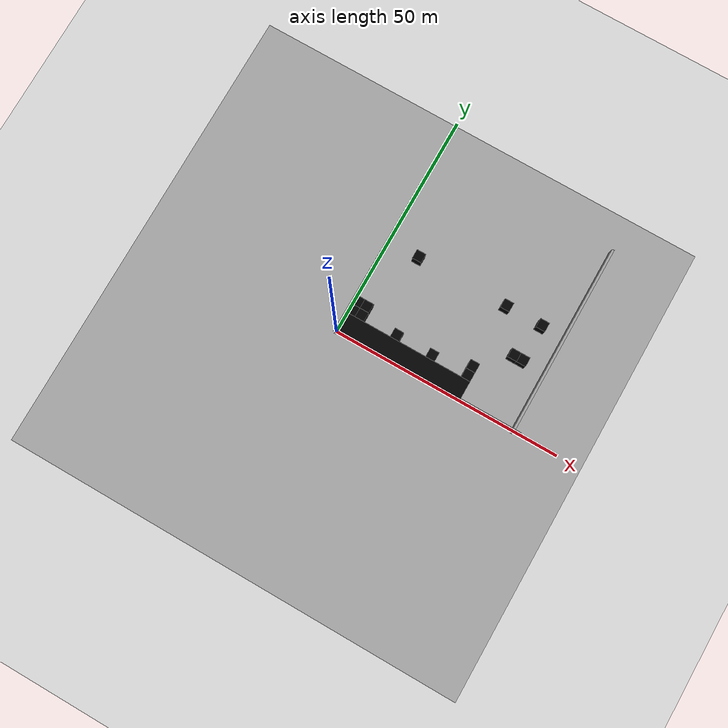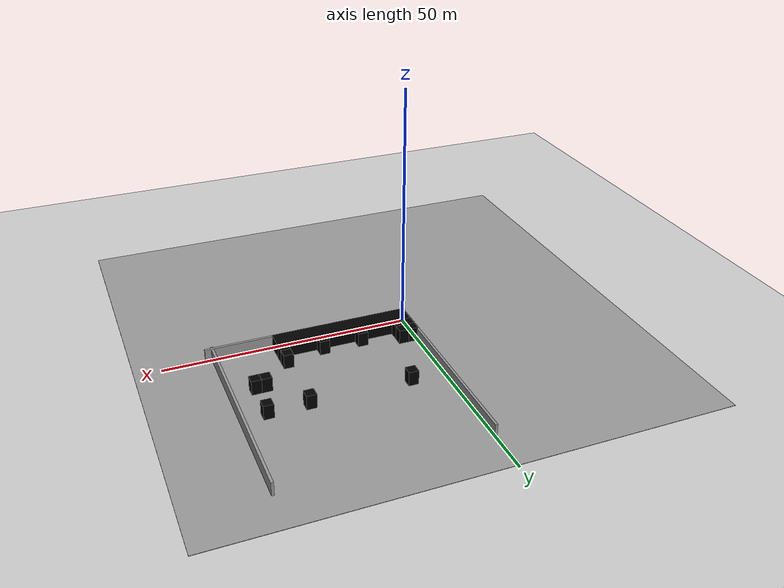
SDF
<sdf version="1.7">
 <world name="default">
  <model name="ground_plane">
   <static>1</static>
   <link name="link">
    <collision name="collision">
     <geometry><plane><normal>0 0 1</normal><size>100 100</size></plane></geometry>
     <surface><friction><ode><mu>100</mu><mu2>50</mu2></ode></friction></surface>
    </collision>
    <visual name="visual">
     <cast_shadows>0</cast_shadows>
     <geometry><plane><normal>0 0 1</normal><size>100 100</size></plane></geometry>
     <material>
      <script><uri>file://media/materials/scripts/gazebo.material</uri><name>Gazebo/Grey</name></script>
     </material>
    </visual>
   </link>
  </model>
  <model name="wood_cube_2_5cm">
   <link name="link">
    <pose>0 0 0.0125 0 -0 0</pose>
    <inertial>
     <mass>0.0073</mass>
     <inertia>
      <ixx>7.60417e-07</ixx>
      <ixy>0</ixy>
      <ixz>0</ixz>
      <iyy>7.60417e-07</iyy>
      <iyz>0</iyz>
      <izz>7.60417e-07</izz>
     </inertia>
    </inertial>
    <collision name="collision">
     <geometry><box><size>0.025 0.025 0.025</size></box></geometry>
     <surface>
      <contact>
       <poissons_ratio>0.347</poissons_ratio>
       <elastic_modulus>8.8e+09</elastic_modulus>
       <ode><kp>100000</kp><kd>100</kd><max_vel>100</max_vel><min_depth>0.001</min_depth></ode>
      </contact>
      <friction>
       <torsional>
        <coefficient>1</coefficient>
        <use_patch_radius>0</use_patch_radius>
        <surface_radius>0.01</surface_radius>
       </torsional>
      </friction>
     </surface>
    </collision>
    <visual name="visual">
     <geometry><box><size>0.025 0.025 0.025</size></box></geometry>
     <material>
      <script><uri>file://media/materials/scripts/gazebo.material</uri><name>Gazebo/Wood</name></script>
     </material>
    </visual>
   </link>
   <pose>9.08294 -8.46454 -0.000474 -1e-06 0.032259 0</pose>
  </model>
  <model name="ground_plane_0">
   <static>1</static>
   <link name="link">
    <collision name="collision">
     <geometry><plane><normal>0 0 1</normal><size>100 100</size></plane></geometry>
     <surface>
      <contact><collide_bitmask>65535</collide_bitmask></contact>
      <friction><ode><mu>100</mu><mu2>50</mu2></ode></friction>
     </surface>
    </collision>
    <visual name="visual">
     <cast_shadows>0</cast_shadows>
     <geometry><plane><normal>0 0 1</normal><size>100 100</size></plane></geometry>
     <material>
      <script><uri>file://media/materials/scripts/gazebo.material</uri><name>Gazebo/Grey</name></script>
     </material>
    </visual>
   </link>
   <pose>5.30691 -0.598783 0 0 -0 0</pose>
  </model>
  <model name="brick_black_2x2_1">
   <link name="chassis">
    <pose>0 0 1.5 0 -0 0</pose>
    <inertial>
     <mass>1</mass>
     <inertia><ixx>1</ixx><ixy>0</ixy><ixz>0</ixz><iyy>1</iyy><iyz>0</iyz><izz>1</izz></inertia>
    </inertial>
    <visual name="visual">
     <geometry><mesh><uri>model://brick_box_3x1x3/meshes/simple_box.dae</uri><scale>2 2 3</scale></mesh></geometry>
     <material>
      <script>
       <uri>model://brick_box_3x1x3/materials/scripts</uri>
       <uri>model://brick_box_3x1x3/materials/textures</uri>
       <name>BrickBox/Diffuse</name>
      </script>
      <shader type="vertex"><normal_map>__default__</normal_map></shader>
      <ambient>0 0 0 1</ambient>
      <diffuse>0 0 0 1</diffuse>
      <specular>0 0 0 1</specular>
      <emissive>0 0 0 1</emissive>
      <lighting>1</lighting>
     </material>
    </visual>
    <collision name="collision">
     <geometry><box><size>2 2 3</size></box></geometry>
     <surface>
      <friction>
       <ode><mu>1</mu><mu2>1</mu2><fdir1>0 0 0</fdir1><slip1>0</slip1><slip2>0</slip2></ode>
       <torsional>
        <coefficient>1</coefficient>
        <patch_radius>0</patch_radius>
        <surface_radius>0</surface_radius>
        <use_patch_radius>1</use_patch_radius>
        <ode><slip>0</slip></ode>
       </torsional>
      </friction>
      <bounce><restitution_coefficient>0</restitution_coefficient><threshold>1e+06</threshold></bounce>
      <contact>
       <collide_without_contact>0</collide_without_contact>
       <collide_without_contact_bitmask>1</collide_without_contact_bitmask>
       <collide_bitmask>1</collide_bitmask>
       <ode>
        <soft_cfm>0</soft_cfm>
        <soft_erp>0.2</soft_erp>
        <kp>1e+13</kp>
        <kd>1</kd>
        <max_vel>0.01</max_vel>
        <min_depth>0</min_depth>
       </ode>
       <bullet>
        <split_impulse>1</split_impulse>
        <split_impulse_penetration_threshold>-0.01</split_impulse_penetration_threshold>
        <soft_cfm>0</soft_cfm>
        <soft_erp>0.2</soft_erp>
        <kp>1e+13</kp>
        <kd>1</kd>
       </bullet>
      </contact>
     </surface>
    </collision>
   </link>
   <static>1</static>
   <pose>35 21 0 0 -0 0</pose>
  </model>
  <model name="brick_black_2x2_5">
   <link name="chassis">
    <pose>0 0 1.5 0 -0 0</pose>
    <inertial>
     <mass>1</mass>
     <inertia><ixx>1</ixx><ixy>0</ixy><ixz>0</ixz><iyy>1</iyy><iyz>0</iyz><izz>1</izz></inertia>
    </inertial>
    <visual name="visual">
     <geometry><mesh><uri>model://brick_box_3x1x3/meshes/simple_box.dae</uri><scale>2 2 3</scale></mesh></geometry>
     <material>
      <script>
       <uri>model://brick_box_3x1x3/materials/scripts</uri>
       <uri>model://brick_box_3x1x3/materials/textures</uri>
       <name>BrickBox/Diffuse</name>
      </script>
      <shader type="vertex"><normal_map>__default__</normal_map></shader>
      <ambient>0 0 0 1</ambient>
      <diffuse>0 0 0 1</diffuse>
      <specular>0 0 0 1</specular>
      <emissive>0 0 0 1</emissive>
      <lighting>1</lighting>
     </material>
    </visual>
    <collision name="collision">
     <geometry><box><size>2 2 3</size></box></geometry>
     <surface>
      <friction>
       <ode><mu>1</mu><mu2>1</mu2><fdir1>0 0 0</fdir1><slip1>0</slip1><slip2>0</slip2></ode>
       <torsional>
        <coefficient>1</coefficient>
        <patch_radius>0</patch_radius>
        <surface_radius>0</surface_radius>
        <use_patch_radius>1</use_patch_radius>
        <ode><slip>0</slip></ode>
       </torsional>
      </friction>
      <bounce><restitution_coefficient>0</restitution_coefficient><threshold>1e+06</threshold></bounce>
      <contact>
       <collide_without_contact>0</collide_without_contact>
       <collide_without_contact_bitmask>1</collide_without_contact_bitmask>
       <collide_bitmask>1</collide_bitmask>
       <ode>
        <soft_cfm>0</soft_cfm>
        <soft_erp>0.2</soft_erp>
        <kp>1e+13</kp>
        <kd>1</kd>
        <max_vel>0.01</max_vel>
        <min_depth>0</min_depth>
       </ode>
       <bullet>
        <split_impulse>1</split_impulse>
        <split_impulse_penetration_threshold>-0.01</split_impulse_penetration_threshold>
        <soft_cfm>0</soft_cfm>
        <soft_erp>0.2</soft_erp>
        <kp>1e+13</kp>
        <kd>1</kd>
       </bullet>
      </contact>
     </surface>
    </collision>
   </link>
   <static>1</static>
   <pose>19 5 0 0 -0 0</pose>
  </model>
  <model name="brick_black_2x2_6">
   <link name="chassis">
    <pose>0 0 1.5 0 -0 0</pose>
    <inertial>
     <mass>1</mass>
     <inertia><ixx>1</ixx><ixy>0</ixy><ixz>0</ixz><iyy>1</iyy><iyz>0</iyz><izz>1</izz></inertia>
    </inertial>
    <visual name="visual">
     <geometry><mesh><uri>model://brick_box_3x1x3/meshes/simple_box.dae</uri><scale>2 2 3</scale></mesh></geometry>
     <material>
      <script>
       <uri>model://brick_box_3x1x3/materials/scripts</uri>
       <uri>model://brick_box_3x1x3/materials/textures</uri>
       <name>BrickBox/Diffuse</name>
      </script>
      <shader type="vertex"><normal_map>__default__</normal_map></shader>
      <ambient>0 0 0 1</ambient>
      <diffuse>0 0 0 1</diffuse>
      <specular>0 0 0 1</specular>
      <emissive>0 0 0 1</emissive>
      <lighting>1</lighting>
     </material>
    </visual>
    <collision name="collision">
     <geometry><box><size>2 2 3</size></box></geometry>
     <surface>
      <friction>
       <ode><mu>1</mu><mu2>1</mu2><fdir1>0 0 0</fdir1><slip1>0</slip1><slip2>0</slip2></ode>
       <torsional>
        <coefficient>1</coefficient>
        <patch_radius>0</patch_radius>
        <surface_radius>0</surface_radius>
        <use_patch_radius>1</use_patch_radius>
        <ode><slip>0</slip></ode>
       </torsional>
      </friction>
      <bounce><restitution_coefficient>0</restitution_coefficient><threshold>1e+06</threshold></bounce>
      <contact>
       <collide_without_contact>0</collide_without_contact>
       <collide_without_contact_bitmask>1</collide_without_contact_bitmask>
       <collide_bitmask>1</collide_bitmask>
       <ode>
        <soft_cfm>0</soft_cfm>
        <soft_erp>0.2</soft_erp>
        <kp>1e+13</kp>
        <kd>1</kd>
        <max_vel>0.01</max_vel>
        <min_depth>0</min_depth>
       </ode>
       <bullet>
        <split_impulse>1</split_impulse>
        <split_impulse_penetration_threshold>-0.01</split_impulse_penetration_threshold>
        <soft_cfm>0</soft_cfm>
        <soft_erp>0.2</soft_erp>
        <kp>1e+13</kp>
        <kd>1</kd>
       </bullet>
      </contact>
     </surface>
    </collision>
   </link>
   <static>1</static>
   <pose>27 7 0 0 -0 0</pose>
  </model>
  <model name="brick_black_2x2_7">
   <link name="chassis">
    <pose>0 0 1.5 0 -0 0</pose>
    <inertial>
     <mass>1</mass>
     <inertia><ixx>1</ixx><ixy>0</ixy><ixz>0</ixz><iyy>1</iyy><iyz>0</iyz><izz>1</izz></inertia>
    </inertial>
    <visual name="visual">
     <geometry><mesh><uri>model://brick_box_3x1x3/meshes/simple_box.dae</uri><scale>2 2 3</scale></mesh></geometry>
     <material>
      <script>
       <uri>model://brick_box_3x1x3/materials/scripts</uri>
       <uri>model://brick_box_3x1x3/materials/textures</uri>
       <name>BrickBox/Diffuse</name>
      </script>
      <shader type="vertex"><normal_map>__default__</normal_map></shader>
      <ambient>0 0 0 1</ambient>
      <diffuse>0 0 0 1</diffuse>
      <specular>0 0 0 1</specular>
      <emissive>0 0 0 1</emissive>
      <lighting>1</lighting>
     </material>
    </visual>
    <collision name="collision">
     <geometry><box><size>2 2 3</size></box></geometry>
     <surface>
      <friction>
       <ode><mu>1</mu><mu2>1</mu2><fdir1>0 0 0</fdir1><slip1>0</slip1><slip2>0</slip2></ode>
       <torsional>
        <coefficient>1</coefficient>
        <patch_radius>0</patch_radius>
        <surface_radius>0</surface_radius>
        <use_patch_radius>1</use_patch_radius>
        <ode><slip>0</slip></ode>
       </torsional>
      </friction>
      <bounce><restitution_coefficient>0</restitution_coefficient><threshold>1e+06</threshold></bounce>
      <contact>
       <collide_without_contact>0</collide_without_contact>
       <collide_without_contact_bitmask>1</collide_without_contact_bitmask>
       <collide_bitmask>1</collide_bitmask>
       <ode>
        <soft_cfm>0</soft_cfm>
        <soft_erp>0.2</soft_erp>
        <kp>1e+13</kp>
        <kd>1</kd>
        <max_vel>0.01</max_vel>
        <min_depth>0</min_depth>
       </ode>
       <bullet>
        <split_impulse>1</split_impulse>
        <split_impulse_penetration_threshold>-0.01</split_impulse_penetration_threshold>
        <soft_cfm>0</soft_cfm>
        <soft_erp>0.2</soft_erp>
        <kp>1e+13</kp>
        <kd>1</kd>
       </bullet>
      </contact>
     </surface>
    </collision>
   </link>
   <static>1</static>
   <pose>27 5 0 0 -0 0</pose>
  </model>
  <model name="brick_black_2x2_8">
   <link name="chassis">
    <pose>0 0 1.5 0 -0 0</pose>
    <inertial>
     <mass>1</mass>
     <inertia><ixx>1</ixx><ixy>0</ixy><ixz>0</ixz><iyy>1</iyy><iyz>0</iyz><izz>1</izz></inertia>
    </inertial>
    <visual name="visual">
     <geometry><mesh><uri>model://brick_box_3x1x3/meshes/simple_box.dae</uri><scale>2 2 3</scale></mesh></geometry>
     <material>
      <script>
       <uri>model://brick_box_3x1x3/materials/scripts</uri>
       <uri>model://brick_box_3x1x3/materials/textures</uri>
       <name>BrickBox/Diffuse</name>
      </script>
      <shader type="vertex"><normal_map>__default__</normal_map></shader>
      <ambient>0 0 0 1</ambient>
      <diffuse>0 0 0 1</diffuse>
      <specular>0 0 0 1</specular>
      <emissive>0 0 0 1</emissive>
      <lighting>1</lighting>
     </material>
    </visual>
    <collision name="collision">
     <geometry><box><size>2 2 3</size></box></geometry>
     <surface>
      <friction>
       <ode><mu>1</mu><mu2>1</mu2><fdir1>0 0 0</fdir1><slip1>0</slip1><slip2>0</slip2></ode>
       <torsional>
        <coefficient>1</coefficient>
        <patch_radius>0</patch_radius>
        <surface_radius>0</surface_radius>
        <use_patch_radius>1</use_patch_radius>
        <ode><slip>0</slip></ode>
       </torsional>
      </friction>
      <bounce><restitution_coefficient>0</restitution_coefficient><threshold>1e+06</threshold></bounce>
      <contact>
       <collide_without_contact>0</collide_without_contact>
       <collide_without_contact_bitmask>1</collide_without_contact_bitmask>
       <collide_bitmask>1</collide_bitmask>
       <ode>
        <soft_cfm>0</soft_cfm>
        <soft_erp>0.2</soft_erp>
        <kp>1e+13</kp>
        <kd>1</kd>
        <max_vel>0.01</max_vel>
        <min_depth>0</min_depth>
       </ode>
       <bullet>
        <split_impulse>1</split_impulse>
        <split_impulse_penetration_threshold>-0.01</split_impulse_penetration_threshold>
        <soft_cfm>0</soft_cfm>
        <soft_erp>0.2</soft_erp>
        <kp>1e+13</kp>
        <kd>1</kd>
       </bullet>
      </contact>
     </surface>
    </collision>
   </link>
   <static>1</static>
   <pose>35 13 0 0 -0 0</pose>
  </model>
  <model name="brick_black_2x2_10">
   <link name="chassis">
    <pose>0 0 1.5 0 -0 0</pose>
    <inertial>
     <mass>1</mass>
     <inertia><ixx>1</ixx><ixy>0</ixy><ixz>0</ixz><iyy>1</iyy><iyz>0</iyz><izz>1</izz></inertia>
    </inertial>
    <visual name="visual">
     <geometry><mesh><uri>model://brick_box_3x1x3/meshes/simple_box.dae</uri><scale>2 2 3</scale></mesh></geometry>
     <material>
      <script>
       <uri>model://brick_box_3x1x3/materials/scripts</uri>
       <uri>model://brick_box_3x1x3/materials/textures</uri>
       <name>BrickBox/Diffuse</name>
      </script>
      <shader type="vertex"><normal_map>__default__</normal_map></shader>
      <ambient>0 0 0 1</ambient>
      <diffuse>0 0 0 1</diffuse>
      <specular>0 0 0 1</specular>
      <emissive>0 0 0 1</emissive>
      <lighting>1</lighting>
     </material>
    </visual>
    <collision name="collision">
     <geometry><box><size>2 2 3</size></box></geometry>
     <surface>
      <friction>
       <ode><mu>1</mu><mu2>1</mu2><fdir1>0 0 0</fdir1><slip1>0</slip1><slip2>0</slip2></ode>
       <torsional>
        <coefficient>1</coefficient>
        <patch_radius>0</patch_radius>
        <surface_radius>0</surface_radius>
        <use_patch_radius>1</use_patch_radius>
        <ode><slip>0</slip></ode>
       </torsional>
      </friction>
      <bounce><restitution_coefficient>0</restitution_coefficient><threshold>1e+06</threshold></bounce>
      <contact>
       <collide_without_contact>0</collide_without_contact>
       <collide_without_contact_bitmask>1</collide_without_contact_bitmask>
       <collide_bitmask>1</collide_bitmask>
       <ode>
        <soft_cfm>0</soft_cfm>
        <soft_erp>0.2</soft_erp>
        <kp>1e+13</kp>
        <kd>1</kd>
        <max_vel>0.01</max_vel>
        <min_depth>0</min_depth>
       </ode>
       <bullet>
        <split_impulse>1</split_impulse>
        <split_impulse_penetration_threshold>-0.01</split_impulse_penetration_threshold>
        <soft_cfm>0</soft_cfm>
        <soft_erp>0.2</soft_erp>
        <kp>1e+13</kp>
        <kd>1</kd>
       </bullet>
      </contact>
     </surface>
    </collision>
   </link>
   <static>1</static>
   <pose>33 13 0 0 -0 0</pose>
  </model>
  <model name="number3_2x2">
   <link name="link">
    <inertial>
     <mass>1</mass>
     <inertia><ixx>1</ixx><ixy>0</ixy><ixz>0</ixz><iyy>1</iyy><iyz>0</iyz><izz>1</izz></inertia>
    </inertial>
    <visual name="visual">
     <geometry><mesh><uri>model://number1/meshes/number.dae</uri><scale>2 2 0.1</scale></mesh></geometry>
     <material>
      <script>
       <uri>model://number3/materials/scripts</uri>
       <uri>model://number3/materials/textures</uri>
       <name>Number/Three</name>
      </script>
      <shader type="pixel"><normal_map>__default__</normal_map></shader>
      <ambient>1 1 1 1</ambient>
      <diffuse>1 1 1 1</diffuse>
      <specular>0 0 0 1</specular>
      <emissive>0 0 0 1</emissive>
     </material>
    </visual>
   </link>
   <static>1</static>
   <pose>33 17 0 0 -0 3.14</pose>
  </model>
  <model name="grey_wall_42">
   <link name="link">
    <pose>0 0 1.4 0 -0 0</pose>
    <inertial>
     <mass>1</mass>
     <inertia><ixx>1</ixx><ixy>0</ixy><ixz>0</ixz><iyy>1</iyy><iyz>0</iyz><izz>1</izz></inertia>
    </inertial>
    <visual name="visual">
     <cast_shadows>0</cast_shadows>
     <geometry><box><size>42 0.5 2.8</size></box></geometry>
     <material>
      <script>
       <uri>model://grey_wall/materials/scripts</uri>
       <uri>model://grey_wall/materials/textures</uri>
       <name>vrc/grey_wall</name>
      </script>
      <shader type="vertex"><normal_map>__default__</normal_map></shader>
      <ambient>1 1 1 1</ambient>
      <diffuse>1 1 1 1</diffuse>
      <specular>0 0 0 1</specular>
      <emissive>0 0 0 1</emissive>
     </material>
    </visual>
    <collision name="collision">
     <geometry><box><size>42 0.5 2.8</size></box></geometry>
     <surface>
      <friction>
       <ode><mu>1</mu><mu2>1</mu2><fdir1>0 0 0</fdir1><slip1>0</slip1><slip2>0</slip2></ode>
       <torsional>
        <coefficient>1</coefficient>
        <patch_radius>0</patch_radius>
        <surface_radius>0</surface_radius>
        <use_patch_radius>1</use_patch_radius>
        <ode><slip>0</slip></ode>
       </torsional>
      </friction>
      <bounce><restitution_coefficient>0</restitution_coefficient><threshold>1e+06</threshold></bounce>
      <contact>
       <collide_without_contact>0</collide_without_contact>
       <collide_without_contact_bitmask>1</collide_without_contact_bitmask>
       <collide_bitmask>1</collide_bitmask>
       <ode>
        <soft_cfm>0</soft_cfm>
        <soft_erp>0.2</soft_erp>
        <kp>1e+13</kp>
        <kd>1</kd>
        <max_vel>0.01</max_vel>
        <min_depth>0</min_depth>
       </ode>
       <bullet>
        <split_impulse>1</split_impulse>
        <split_impulse_penetration_threshold>-0.01</split_impulse_penetration_threshold>
        <soft_cfm>0</soft_cfm>
        <soft_erp>0.2</soft_erp>
        <kp>1e+13</kp>
        <kd>1</kd>
       </bullet>
      </contact>
     </surface>
    </collision>
   </link>
   <static>1</static>
   <pose>20.5 0 0 0 -0 0</pose>
  </model>
  <model name="grey_wall_42_1">
   <link name="link">
    <pose>0 0 1.4 0 -0 0</pose>
    <inertial>
     <mass>1</mass>
     <inertia><ixx>1</ixx><ixy>0</ixy><ixz>0</ixz><iyy>1</iyy><iyz>0</iyz><izz>1</izz></inertia>
    </inertial>
    <visual name="visual">
     <cast_shadows>0</cast_shadows>
     <geometry><box><size>42 0.5 2.8</size></box></geometry>
     <material>
      <script>
       <uri>model://grey_wall/materials/scripts</uri>
       <uri>model://grey_wall/materials/textures</uri>
       <name>vrc/grey_wall</name>
      </script>
      <shader type="vertex"><normal_map>__default__</normal_map></shader>
      <ambient>1 1 1 1</ambient>
      <diffuse>1 1 1 1</diffuse>
      <specular>0 0 0 1</specular>
      <emissive>0 0 0 1</emissive>
     </material>
    </visual>
    <collision name="collision">
     <geometry><box><size>42 0.5 2.8</size></box></geometry>
     <surface>
      <friction>
       <ode><mu>1</mu><mu2>1</mu2><fdir1>0 0 0</fdir1><slip1>0</slip1><slip2>0</slip2></ode>
       <torsional>
        <coefficient>1</coefficient>
        <patch_radius>0</patch_radius>
        <surface_radius>0</surface_radius>
        <use_patch_radius>1</use_patch_radius>
        <ode><slip>0</slip></ode>
       </torsional>
      </friction>
      <bounce><restitution_coefficient>0</restitution_coefficient><threshold>1e+06</threshold></bounce>
      <contact>
       <collide_without_contact>0</collide_without_contact>
       <collide_without_contact_bitmask>1</collide_without_contact_bitmask>
       <collide_bitmask>1</collide_bitmask>
       <ode>
        <soft_cfm>0</soft_cfm>
        <soft_erp>0.2</soft_erp>
        <kp>1e+13</kp>
        <kd>1</kd>
        <max_vel>0.01</max_vel>
        <min_depth>0</min_depth>
       </ode>
       <bullet>
        <split_impulse>1</split_impulse>
        <split_impulse_penetration_threshold>-0.01</split_impulse_penetration_threshold>
        <soft_cfm>0</soft_cfm>
        <soft_erp>0.2</soft_erp>
        <kp>1e+13</kp>
        <kd>1</kd>
       </bullet>
      </contact>
     </surface>
    </collision>
   </link>
   <static>1</static>
   <pose>40 20.5 0 0 -0 1.57</pose>
  </model>
  <model name="grey_wall_42_2">
   <link name="link">
    <pose>0 0 1.4 0 -0 0</pose>
    <inertial>
     <mass>1</mass>
     <inertia><ixx>1</ixx><ixy>0</ixy><ixz>0</ixz><iyy>1</iyy><iyz>0</iyz><izz>1</izz></inertia>
    </inertial>
    <visual name="visual">
     <cast_shadows>0</cast_shadows>
     <geometry><box><size>42 0.5 2.8</size></box></geometry>
     <material>
      <script>
       <uri>model://grey_wall/materials/scripts</uri>
       <uri>model://grey_wall/materials/textures</uri>
       <name>vrc/grey_wall</name>
      </script>
      <shader type="vertex"><normal_map>__default__</normal_map></shader>
      <ambient>1 1 1 1</ambient>
      <diffuse>1 1 1 1</diffuse>
      <specular>0 0 0 1</specular>
      <emissive>0 0 0 1</emissive>
     </material>
    </visual>
    <collision name="collision">
     <geometry><box><size>42 0.5 2.8</size></box></geometry>
     <surface>
      <friction>
       <ode><mu>1</mu><mu2>1</mu2><fdir1>0 0 0</fdir1><slip1>0</slip1><slip2>0</slip2></ode>
       <torsional>
        <coefficient>1</coefficient>
        <patch_radius>0</patch_radius>
        <surface_radius>0</surface_radius>
        <use_patch_radius>1</use_patch_radius>
        <ode><slip>0</slip></ode>
       </torsional>
      </friction>
      <bounce><restitution_coefficient>0</restitution_coefficient><threshold>1e+06</threshold></bounce>
      <contact>
       <collide_without_contact>0</collide_without_contact>
       <collide_without_contact_bitmask>1</collide_without_contact_bitmask>
       <collide_bitmask>1</collide_bitmask>
       <ode>
        <soft_cfm>0</soft_cfm>
        <soft_erp>0.2</soft_erp>
        <kp>1e+13</kp>
        <kd>1</kd>
        <max_vel>0.01</max_vel>
        <min_depth>0</min_depth>
       </ode>
       <bullet>
        <split_impulse>1</split_impulse>
        <split_impulse_penetration_threshold>-0.01</split_impulse_penetration_threshold>
        <soft_cfm>0</soft_cfm>
        <soft_erp>0.2</soft_erp>
        <kp>1e+13</kp>
        <kd>1</kd>
       </bullet>
      </contact>
     </surface>
    </collision>
   </link>
   <static>1</static>
   <pose>0 20.5 0 0 -0 1.57</pose>
  </model>
  <model name="brick_black_28x4_0">
   <link name="chassis">
    <pose>0 0 1.5 0 -0 0</pose>
    <inertial>
     <mass>1</mass>
     <inertia><ixx>1</ixx><ixy>0</ixy><ixz>0</ixz><iyy>1</iyy><iyz>0</iyz><izz>1</izz></inertia>
    </inertial>
    <visual name="visual">
     <geometry>
      <mesh><uri>model://brick_box_3x1x3/meshes/simple_box.dae</uri><scale>28 4 3</scale></mesh>
     </geometry>
     <material>
      <script>
       <uri>model://brick_box_3x1x3/materials/scripts</uri>
       <uri>model://brick_box_3x1x3/materials/textures</uri>
       <name>BrickBox/Diffuse</name>
      </script>
      <shader type="vertex"><normal_map>__default__</normal_map></shader>
      <ambient>0 0 0 1</ambient>
      <diffuse>0 0 0 1</diffuse>
      <specular>0 0 0 1</specular>
      <emissive>0 0 0 1</emissive>
      <lighting>1</lighting>
     </material>
    </visual>
    <collision name="collision">
     <geometry><box><size>28 4 3</size></box></geometry>
     <surface>
      <friction>
       <ode><mu>1</mu><mu2>1</mu2><fdir1>0 0 0</fdir1><slip1>0</slip1><slip2>0</slip2></ode>
       <torsional>
        <coefficient>1</coefficient>
        <patch_radius>0</patch_radius>
        <surface_radius>0</surface_radius>
        <use_patch_radius>1</use_patch_radius>
        <ode><slip>0</slip></ode>
       </torsional>
      </friction>
      <bounce><restitution_coefficient>0</restitution_coefficient><threshold>1e+06</threshold></bounce>
      <contact>
       <collide_without_contact>0</collide_without_contact>
       <collide_without_contact_bitmask>1</collide_without_contact_bitmask>
       <collide_bitmask>1</collide_bitmask>
       <ode>
        <soft_cfm>0</soft_cfm>
        <soft_erp>0.2</soft_erp>
        <kp>1e+13</kp>
        <kd>1</kd>
        <max_vel>0.01</max_vel>
        <min_depth>0</min_depth>
       </ode>
       <bullet>
        <split_impulse>1</split_impulse>
        <split_impulse_penetration_threshold>-0.01</split_impulse_penetration_threshold>
        <soft_cfm>0</soft_cfm>
        <soft_erp>0.2</soft_erp>
        <kp>1e+13</kp>
        <kd>1</kd>
       </bullet>
      </contact>
     </surface>
    </collision>
   </link>
   <static>1</static>
   <pose>14 2 0 0 -0 0</pose>
  </model>
  <model name="brick_black_2x2_9">
   <link name="chassis">
    <pose>0 0 1.5 0 -0 0</pose>
    <inertial>
     <mass>1</mass>
     <inertia><ixx>1</ixx><ixy>0</ixy><ixz>0</ixz><iyy>1</iyy><iyz>0</iyz><izz>1</izz></inertia>
    </inertial>
    <visual name="visual">
     <geometry><mesh><uri>model://brick_box_3x1x3/meshes/simple_box.dae</uri><scale>2 2 3</scale></mesh></geometry>
     <material>
      <script>
       <uri>model://brick_box_3x1x3/materials/scripts</uri>
       <uri>model://brick_box_3x1x3/materials/textures</uri>
       <name>BrickBox/Diffuse</name>
      </script>
      <shader type="vertex"><normal_map>__default__</normal_map></shader>
      <ambient>0 0 0 1</ambient>
      <diffuse>0 0 0 1</diffuse>
      <specular>0 0 0 1</specular>
      <emissive>0 0 0 1</emissive>
      <lighting>1</lighting>
     </material>
    </visual>
    <collision name="collision">
     <geometry><box><size>2 2 3</size></box></geometry>
     <surface>
      <friction>
       <ode><mu>1</mu><mu2>1</mu2><fdir1>0 0 0</fdir1><slip1>0</slip1><slip2>0</slip2></ode>
       <torsional>
        <coefficient>1</coefficient>
        <patch_radius>0</patch_radius>
        <surface_radius>0</surface_radius>
        <use_patch_radius>1</use_patch_radius>
        <ode><slip>0</slip></ode>
       </torsional>
      </friction>
      <bounce><restitution_coefficient>0</restitution_coefficient><threshold>1e+06</threshold></bounce>
      <contact>
       <collide_without_contact>0</collide_without_contact>
       <collide_without_contact_bitmask>1</collide_without_contact_bitmask>
       <collide_bitmask>1</collide_bitmask>
       <ode>
        <soft_cfm>0</soft_cfm>
        <soft_erp>0.2</soft_erp>
        <kp>1e+13</kp>
        <kd>1</kd>
        <max_vel>0.01</max_vel>
        <min_depth>0</min_depth>
       </ode>
       <bullet>
        <split_impulse>1</split_impulse>
        <split_impulse_penetration_threshold>-0.01</split_impulse_penetration_threshold>
        <soft_cfm>0</soft_cfm>
        <soft_erp>0.2</soft_erp>
        <kp>1e+13</kp>
        <kd>1</kd>
       </bullet>
      </contact>
     </surface>
    </collision>
   </link>
   <static>1</static>
   <pose>11 5 0 0 -0 0</pose>
  </model>
  <model name="brick_black_2x2_11">
   <link name="chassis">
    <pose>0 0 1.5 0 -0 0</pose>
    <inertial>
     <mass>1</mass>
     <inertia><ixx>1</ixx><ixy>0</ixy><ixz>0</ixz><iyy>1</iyy><iyz>0</iyz><izz>1</izz></inertia>
    </inertial>
    <visual name="visual">
     <geometry><mesh><uri>model://brick_box_3x1x3/meshes/simple_box.dae</uri><scale>2 2 3</scale></mesh></geometry>
     <material>
      <script>
       <uri>model://brick_box_3x1x3/materials/scripts</uri>
       <uri>model://brick_box_3x1x3/materials/textures</uri>
       <name>BrickBox/Diffuse</name>
      </script>
      <shader type="vertex"><normal_map>__default__</normal_map></shader>
      <ambient>0 0 0 1</ambient>
      <diffuse>0 0 0 1</diffuse>
      <specular>0 0 0 1</specular>
      <emissive>0 0 0 1</emissive>
      <lighting>1</lighting>
     </material>
    </visual>
    <collision name="collision">
     <geometry><box><size>2 2 3</size></box></geometry>
     <surface>
      <friction>
       <ode><mu>1</mu><mu2>1</mu2><fdir1>0 0 0</fdir1><slip1>0</slip1><slip2>0</slip2></ode>
       <torsional>
        <coefficient>1</coefficient>
        <patch_radius>0</patch_radius>
        <surface_radius>0</surface_radius>
        <use_patch_radius>1</use_patch_radius>
        <ode><slip>0</slip></ode>
       </torsional>
      </friction>
      <bounce><restitution_coefficient>0</restitution_coefficient><threshold>1e+06</threshold></bounce>
      <contact>
       <collide_without_contact>0</collide_without_contact>
       <collide_without_contact_bitmask>1</collide_without_contact_bitmask>
       <collide_bitmask>1</collide_bitmask>
       <ode>
        <soft_cfm>0</soft_cfm>
        <soft_erp>0.2</soft_erp>
        <kp>1e+13</kp>
        <kd>1</kd>
        <max_vel>0.01</max_vel>
        <min_depth>0</min_depth>
       </ode>
       <bullet>
        <split_impulse>1</split_impulse>
        <split_impulse_penetration_threshold>-0.01</split_impulse_penetration_threshold>
        <soft_cfm>0</soft_cfm>
        <soft_erp>0.2</soft_erp>
        <kp>1e+13</kp>
        <kd>1</kd>
       </bullet>
      </contact>
     </surface>
    </collision>
   </link>
   <static>1</static>
   <pose>3 5 0 0 -0 0</pose>
  </model>
  <model name="brick_black_2x2_12">
   <link name="chassis">
    <pose>0 0 1.5 0 -0 0</pose>
    <inertial>
     <mass>1</mass>
     <inertia><ixx>1</ixx><ixy>0</ixy><ixz>0</ixz><iyy>1</iyy><iyz>0</iyz><izz>1</izz></inertia>
    </inertial>
    <visual name="visual">
     <geometry><mesh><uri>model://brick_box_3x1x3/meshes/simple_box.dae</uri><scale>2 2 3</scale></mesh></geometry>
     <material>
      <script>
       <uri>model://brick_box_3x1x3/materials/scripts</uri>
       <uri>model://brick_box_3x1x3/materials/textures</uri>
       <name>BrickBox/Diffuse</name>
      </script>
      <shader type="vertex"><normal_map>__default__</normal_map></shader>
      <ambient>0 0 0 1</ambient>
      <diffuse>0 0 0 1</diffuse>
      <specular>0 0 0 1</specular>
      <emissive>0 0 0 1</emissive>
      <lighting>1</lighting>
     </material>
    </visual>
    <collision name="collision">
     <geometry><box><size>2 2 3</size></box></geometry>
     <surface>
      <friction>
       <ode><mu>1</mu><mu2>1</mu2><fdir1>0 0 0</fdir1><slip1>0</slip1><slip2>0</slip2></ode>
       <torsional>
        <coefficient>1</coefficient>
        <patch_radius>0</patch_radius>
        <surface_radius>0</surface_radius>
        <use_patch_radius>1</use_patch_radius>
        <ode><slip>0</slip></ode>
       </torsional>
      </friction>
      <bounce><restitution_coefficient>0</restitution_coefficient><threshold>1e+06</threshold></bounce>
      <contact>
       <collide_without_contact>0</collide_without_contact>
       <collide_without_contact_bitmask>1</collide_without_contact_bitmask>
       <collide_bitmask>1</collide_bitmask>
       <ode>
        <soft_cfm>0</soft_cfm>
        <soft_erp>0.2</soft_erp>
        <kp>1e+13</kp>
        <kd>1</kd>
        <max_vel>0.01</max_vel>
        <min_depth>0</min_depth>
       </ode>
       <bullet>
        <split_impulse>1</split_impulse>
        <split_impulse_penetration_threshold>-0.01</split_impulse_penetration_threshold>
        <soft_cfm>0</soft_cfm>
        <soft_erp>0.2</soft_erp>
        <kp>1e+13</kp>
        <kd>1</kd>
       </bullet>
      </contact>
     </surface>
    </collision>
   </link>
   <static>1</static>
   <pose>3 7 0 0 -0 0</pose>
  </model>
  <model name="brick_black_2x2_13">
   <link name="chassis">
    <pose>0 0 1.5 0 -0 0</pose>
    <inertial>
     <mass>1</mass>
     <inertia><ixx>1</ixx><ixy>0</ixy><ixz>0</ixz><iyy>1</iyy><iyz>0</iyz><izz>1</izz></inertia>
    </inertial>
    <visual name="visual">
     <geometry><mesh><uri>model://brick_box_3x1x3/meshes/simple_box.dae</uri><scale>2 2 3</scale></mesh></geometry>
     <material>
      <script>
       <uri>model://brick_box_3x1x3/materials/scripts</uri>
       <uri>model://brick_box_3x1x3/materials/textures</uri>
       <name>BrickBox/Diffuse</name>
      </script>
      <shader type="vertex"><normal_map>__default__</normal_map></shader>
      <ambient>0 0 0 1</ambient>
      <diffuse>0 0 0 1</diffuse>
      <specular>0 0 0 1</specular>
      <emissive>0 0 0 1</emissive>
      <lighting>1</lighting>
     </material>
    </visual>
    <collision name="collision">
     <geometry><box><size>2 2 3</size></box></geometry>
     <surface>
      <friction>
       <ode><mu>1</mu><mu2>1</mu2><fdir1>0 0 0</fdir1><slip1>0</slip1><slip2>0</slip2></ode>
       <torsional>
        <coefficient>1</coefficient>
        <patch_radius>0</patch_radius>
        <surface_radius>0</surface_radius>
        <use_patch_radius>1</use_patch_radius>
        <ode><slip>0</slip></ode>
       </torsional>
      </friction>
      <bounce><restitution_coefficient>0</restitution_coefficient><threshold>1e+06</threshold></bounce>
      <contact>
       <collide_without_contact>0</collide_without_contact>
       <collide_without_contact_bitmask>1</collide_without_contact_bitmask>
       <collide_bitmask>1</collide_bitmask>
       <ode>
        <soft_cfm>0</soft_cfm>
        <soft_erp>0.2</soft_erp>
        <kp>1e+13</kp>
        <kd>1</kd>
        <max_vel>0.01</max_vel>
        <min_depth>0</min_depth>
       </ode>
       <bullet>
        <split_impulse>1</split_impulse>
        <split_impulse_penetration_threshold>-0.01</split_impulse_penetration_threshold>
        <soft_cfm>0</soft_cfm>
        <soft_erp>0.2</soft_erp>
        <kp>1e+13</kp>
        <kd>1</kd>
       </bullet>
      </contact>
     </surface>
    </collision>
   </link>
   <static>1</static>
   <pose>1 7 0 0 -0 0</pose>
  </model>
  <model name="brick_black_2x2_14">
   <link name="chassis">
    <pose>0 0 1.5 0 -0 0</pose>
    <inertial>
     <mass>1</mass>
     <inertia><ixx>1</ixx><ixy>0</ixy><ixz>0</ixz><iyy>1</iyy><iyz>0</iyz><izz>1</izz></inertia>
    </inertial>
    <visual name="visual">
     <geometry><mesh><uri>model://brick_box_3x1x3/meshes/simple_box.dae</uri><scale>2 2 3</scale></mesh></geometry>
     <material>
      <script>
       <uri>model://brick_box_3x1x3/materials/scripts</uri>
       <uri>model://brick_box_3x1x3/materials/textures</uri>
       <name>BrickBox/Diffuse</name>
      </script>
      <shader type="vertex"><normal_map>__default__</normal_map></shader>
      <ambient>0 0 0 1</ambient>
      <diffuse>0 0 0 1</diffuse>
      <specular>0 0 0 1</specular>
      <emissive>0 0 0 1</emissive>
      <lighting>1</lighting>
     </material>
    </visual>
    <collision name="collision">
     <geometry><box><size>2 2 3</size></box></geometry>
     <surface>
      <friction>
       <ode><mu>1</mu><mu2>1</mu2><fdir1>0 0 0</fdir1><slip1>0</slip1><slip2>0</slip2></ode>
       <torsional>
        <coefficient>1</coefficient>
        <patch_radius>0</patch_radius>
        <surface_radius>0</surface_radius>
        <use_patch_radius>1</use_patch_radius>
        <ode><slip>0</slip></ode>
       </torsional>
      </friction>
      <bounce><restitution_coefficient>0</restitution_coefficient><threshold>1e+06</threshold></bounce>
      <contact>
       <collide_without_contact>0</collide_without_contact>
       <collide_without_contact_bitmask>1</collide_without_contact_bitmask>
       <collide_bitmask>1</collide_bitmask>
       <ode>
        <soft_cfm>0</soft_cfm>
        <soft_erp>0.2</soft_erp>
        <kp>1e+13</kp>
        <kd>1</kd>
        <max_vel>0.01</max_vel>
        <min_depth>0</min_depth>
       </ode>
       <bullet>
        <split_impulse>1</split_impulse>
        <split_impulse_penetration_threshold>-0.01</split_impulse_penetration_threshold>
        <soft_cfm>0</soft_cfm>
        <soft_erp>0.2</soft_erp>
        <kp>1e+13</kp>
        <kd>1</kd>
       </bullet>
      </contact>
     </surface>
    </collision>
   </link>
   <static>1</static>
   <pose>1 5 0 0 -0 0</pose>
  </model>
  <model name="number1_2x2_0">
   <link name="link">
    <inertial>
     <mass>1</mass>
     <inertia><ixx>1</ixx><ixy>0</ixy><ixz>0</ixz><iyy>1</iyy><iyz>0</iyz><izz>1</izz></inertia>
    </inertial>
    <visual name="visual">
     <geometry><mesh><uri>model://number1/meshes/number.dae</uri><scale>2 2 0.1</scale></mesh></geometry>
     <material>
      <script>
       <uri>model://number1/materials/scripts</uri>
       <uri>model://number1/materials/textures</uri>
       <name>Number/One</name>
      </script>
      <shader type="pixel"><normal_map>__default__</normal_map></shader>
      <ambient>1 1 1 1</ambient>
      <diffuse>1 1 1 1</diffuse>
      <specular>0 0 0 1</specular>
      <emissive>0 0 0 1</emissive>
     </material>
    </visual>
   </link>
   <static>1</static>
   <pose>25 7 0 0 -0 3.14</pose>
  </model>
  <model name="number1_2x2_1">
   <link name="link">
    <inertial>
     <mass>1</mass>
     <inertia><ixx>1</ixx><ixy>0</ixy><ixz>0</ixz><iyy>1</iyy><iyz>0</iyz><izz>1</izz></inertia>
    </inertial>
    <visual name="visual">
     <geometry><mesh><uri>model://number1/meshes/number.dae</uri><scale>2 2 0.1</scale></mesh></geometry>
     <material>
      <script>
       <uri>model://number1/materials/scripts</uri>
       <uri>model://number1/materials/textures</uri>
       <name>Number/One</name>
      </script>
      <shader type="pixel"><normal_map>__default__</normal_map></shader>
      <ambient>1 1 1 1</ambient>
      <diffuse>1 1 1 1</diffuse>
      <specular>0 0 0 1</specular>
      <emissive>0 0 0 1</emissive>
     </material>
    </visual>
   </link>
   <static>1</static>
   <pose>21 7 0 0 -0 3.14</pose>
  </model>
  <model name="number2_2x2_0">
   <link name="link">
    <inertial>
     <mass>1</mass>
     <inertia><ixx>1</ixx><ixy>0</ixy><ixz>0</ixz><iyy>1</iyy><iyz>0</iyz><izz>1</izz></inertia>
    </inertial>
    <visual name="visual">
     <geometry><mesh><uri>model://number1/meshes/number.dae</uri><scale>2 2 0.1</scale></mesh></geometry>
     <material>
      <script>
       <uri>model://number2/materials/scripts</uri>
       <uri>model://number2/materials/textures</uri>
       <name>Number/Two</name>
      </script>
      <shader type="pixel"><normal_map>__default__</normal_map></shader>
      <ambient>1 1 1 1</ambient>
      <diffuse>1 1 1 1</diffuse>
      <specular>0 0 0 1</specular>
      <emissive>0 0 0 1</emissive>
     </material>
    </visual>
   </link>
   <static>1</static>
   <pose>17 7 0 0 -0 3.14</pose>
  </model>
  <model name="number2_2x2_1">
   <link name="link">
    <inertial>
     <mass>1</mass>
     <inertia><ixx>1</ixx><ixy>0</ixy><ixz>0</ixz><iyy>1</iyy><iyz>0</iyz><izz>1</izz></inertia>
    </inertial>
    <visual name="visual">
     <geometry><mesh><uri>model://number1/meshes/number.dae</uri><scale>2 2 0.1</scale></mesh></geometry>
     <material>
      <script>
       <uri>model://number2/materials/scripts</uri>
       <uri>model://number2/materials/textures</uri>
       <name>Number/Two</name>
      </script>
      <shader type="pixel"><normal_map>__default__</normal_map></shader>
      <ambient>1 1 1 1</ambient>
      <diffuse>1 1 1 1</diffuse>
      <specular>0 0 0 1</specular>
      <emissive>0 0 0 1</emissive>
     </material>
    </visual>
   </link>
   <static>1</static>
   <pose>13 7 0 0 -0 3.14</pose>
  </model>
  <model name="number3_2x2_0">
   <link name="link">
    <inertial>
     <mass>1</mass>
     <inertia><ixx>1</ixx><ixy>0</ixy><ixz>0</ixz><iyy>1</iyy><iyz>0</iyz><izz>1</izz></inertia>
    </inertial>
    <visual name="visual">
     <geometry><mesh><uri>model://number1/meshes/number.dae</uri><scale>2 2 0.1</scale></mesh></geometry>
     <material>
      <script>
       <uri>model://number3/materials/scripts</uri>
       <uri>model://number3/materials/textures</uri>
       <name>Number/Three</name>
      </script>
      <shader type="pixel"><normal_map>__default__</normal_map></shader>
      <ambient>1 1 1 1</ambient>
      <diffuse>1 1 1 1</diffuse>
      <specular>0 0 0 1</specular>
      <emissive>0 0 0 1</emissive>
     </material>
    </visual>
   </link>
   <static>1</static>
   <pose>9 7 0 0 -0 3.14</pose>
  </model>
  <model name="number3_2x2_1">
   <link name="link">
    <inertial>
     <mass>1</mass>
     <inertia><ixx>1</ixx><ixy>0</ixy><ixz>0</ixz><iyy>1</iyy><iyz>0</iyz><izz>1</izz></inertia>
    </inertial>
    <visual name="visual">
     <geometry><mesh><uri>model://number1/meshes/number.dae</uri><scale>2 2 0.1</scale></mesh></geometry>
     <material>
      <script>
       <uri>model://number3/materials/scripts</uri>
       <uri>model://number3/materials/textures</uri>
       <name>Number/Three</name>
      </script>
      <shader type="pixel"><normal_map>__default__</normal_map></shader>
      <ambient>1 1 1 1</ambient>
      <diffuse>1 1 1 1</diffuse>
      <specular>0 0 0 1</specular>
      <emissive>0 0 0 1</emissive>
     </material>
    </visual>
   </link>
   <static>1</static>
   <pose>5 7 0 0 -0 3.14</pose>
  </model>
  <model name="brick_black_2x2_17">
   <link name="chassis">
    <pose>0 0 1.5 0 -0 0</pose>
    <inertial>
     <mass>1</mass>
     <inertia><ixx>1</ixx><ixy>0</ixy><ixz>0</ixz><iyy>1</iyy><iyz>0</iyz><izz>1</izz></inertia>
    </inertial>
    <visual name="visual">
     <geometry><mesh><uri>model://brick_box_3x1x3/meshes/simple_box.dae</uri><scale>2 2 3</scale></mesh></geometry>
     <material>
      <script>
       <uri>model://brick_box_3x1x3/materials/scripts</uri>
       <uri>model://brick_box_3x1x3/materials/textures</uri>
       <name>BrickBox/Diffuse</name>
      </script>
      <shader type="vertex"><normal_map>__default__</normal_map></shader>
      <ambient>0 0 0 1</ambient>
      <diffuse>0 0 0 1</diffuse>
      <specular>0 0 0 1</specular>
      <emissive>0 0 0 1</emissive>
      <lighting>1</lighting>
     </material>
    </visual>
    <collision name="collision">
     <geometry><box><size>2 2 3</size></box></geometry>
     <surface>
      <friction>
       <ode><mu>1</mu><mu2>1</mu2><fdir1>0 0 0</fdir1><slip1>0</slip1><slip2>0</slip2></ode>
       <torsional>
        <coefficient>1</coefficient>
        <patch_radius>0</patch_radius>
        <surface_radius>0</surface_radius>
        <use_patch_radius>1</use_patch_radius>
        <ode><slip>0</slip></ode>
       </torsional>
      </friction>
      <bounce><restitution_coefficient>0</restitution_coefficient><threshold>1e+06</threshold></bounce>
      <contact>
       <collide_without_contact>0</collide_without_contact>
       <collide_without_contact_bitmask>1</collide_without_contact_bitmask>
       <collide_bitmask>1</collide_bitmask>
       <ode>
        <soft_cfm>0</soft_cfm>
        <soft_erp>0.2</soft_erp>
        <kp>1e+13</kp>
        <kd>1</kd>
        <max_vel>0.01</max_vel>
        <min_depth>0</min_depth>
       </ode>
       <bullet>
        <split_impulse>1</split_impulse>
        <split_impulse_penetration_threshold>-0.01</split_impulse_penetration_threshold>
        <soft_cfm>0</soft_cfm>
        <soft_erp>0.2</soft_erp>
        <kp>1e+13</kp>
        <kd>1</kd>
       </bullet>
      </contact>
     </surface>
    </collision>
   </link>
   <static>1</static>
   <pose>27 21 0 0 -0 0</pose>
  </model>
  <model name="brick_black_2x2_28">
   <link name="chassis">
    <pose>0 0 1.5 0 -0 0</pose>
    <inertial>
     <mass>1</mass>
     <inertia><ixx>1</ixx><ixy>0</ixy><ixz>0</ixz><iyy>1</iyy><iyz>0</iyz><izz>1</izz></inertia>
    </inertial>
    <visual name="visual">
     <geometry><mesh><uri>model://brick_box_3x1x3/meshes/simple_box.dae</uri><scale>2 2 3</scale></mesh></geometry>
     <material>
      <script>
       <uri>model://brick_box_3x1x3/materials/scripts</uri>
       <uri>model://brick_box_3x1x3/materials/textures</uri>
       <name>BrickBox/Diffuse</name>
      </script>
      <shader type="vertex"><normal_map>__default__</normal_map></shader>
      <ambient>0 0 0 1</ambient>
      <diffuse>0 0 0 1</diffuse>
      <specular>0 0 0 1</specular>
      <emissive>0 0 0 1</emissive>
      <lighting>1</lighting>
     </material>
    </visual>
    <collision name="collision">
     <geometry><box><size>2 2 3</size></box></geometry>
     <surface>
      <friction>
       <ode><mu>1</mu><mu2>1</mu2><fdir1>0 0 0</fdir1><slip1>0</slip1><slip2>0</slip2></ode>
       <torsional>
        <coefficient>1</coefficient>
        <patch_radius>0</patch_radius>
        <surface_radius>0</surface_radius>
        <use_patch_radius>1</use_patch_radius>
        <ode><slip>0</slip></ode>
       </torsional>
      </friction>
      <bounce><restitution_coefficient>0</restitution_coefficient><threshold>1e+06</threshold></bounce>
      <contact>
       <collide_without_contact>0</collide_without_contact>
       <collide_without_contact_bitmask>1</collide_without_contact_bitmask>
       <collide_bitmask>1</collide_bitmask>
       <ode>
        <soft_cfm>0</soft_cfm>
        <soft_erp>0.2</soft_erp>
        <kp>1e+13</kp>
        <kd>1</kd>
        <max_vel>0.01</max_vel>
        <min_depth>0</min_depth>
       </ode>
       <bullet>
        <split_impulse>1</split_impulse>
        <split_impulse_penetration_threshold>-0.01</split_impulse_penetration_threshold>
        <soft_cfm>0</soft_cfm>
        <soft_erp>0.2</soft_erp>
        <kp>1e+13</kp>
        <kd>1</kd>
       </bullet>
      </contact>
     </surface>
    </collision>
   </link>
   <static>1</static>
   <pose>7 21 0 0 -0 0</pose>
  </model>
 </world>
</sdf>
